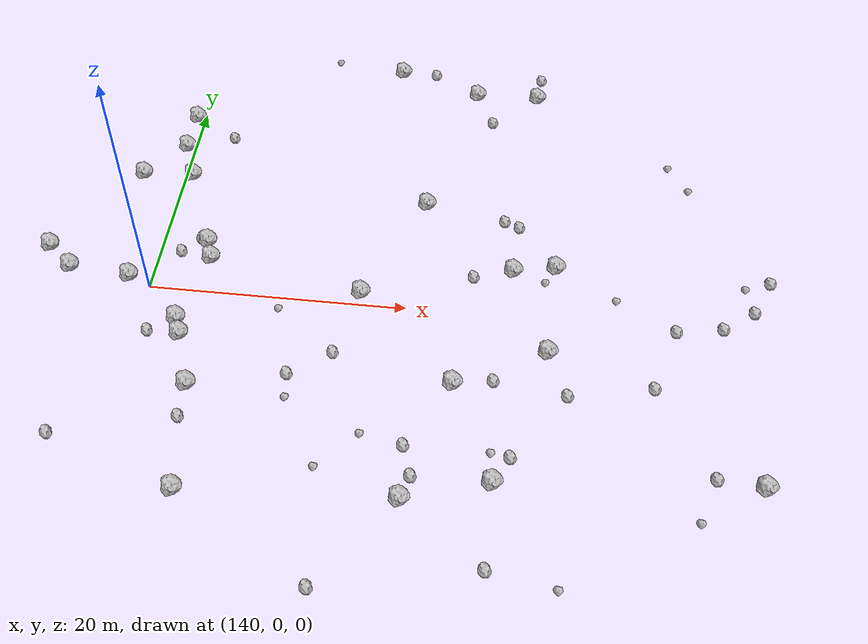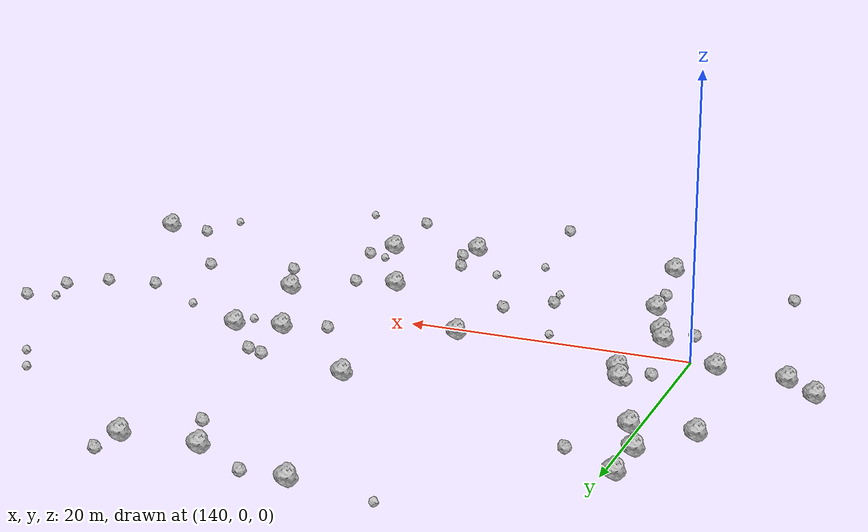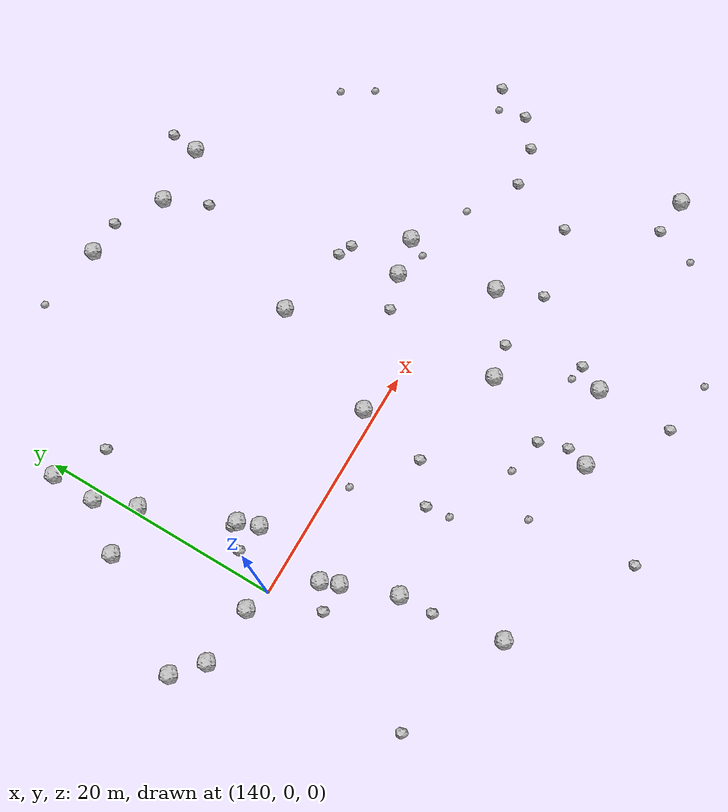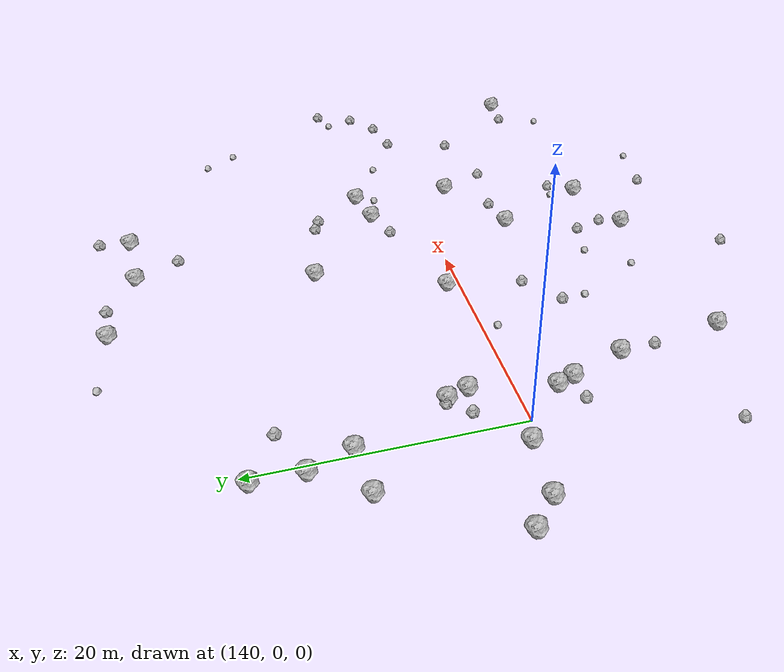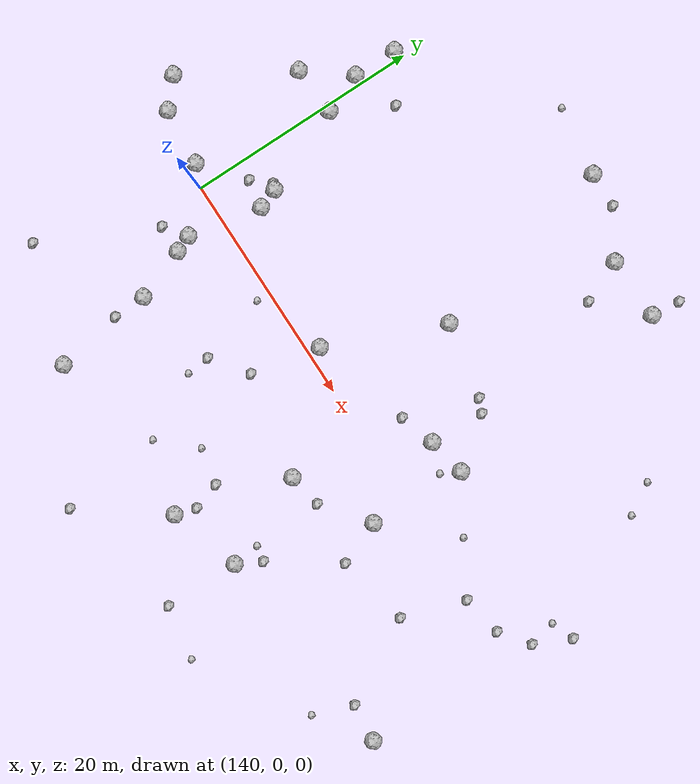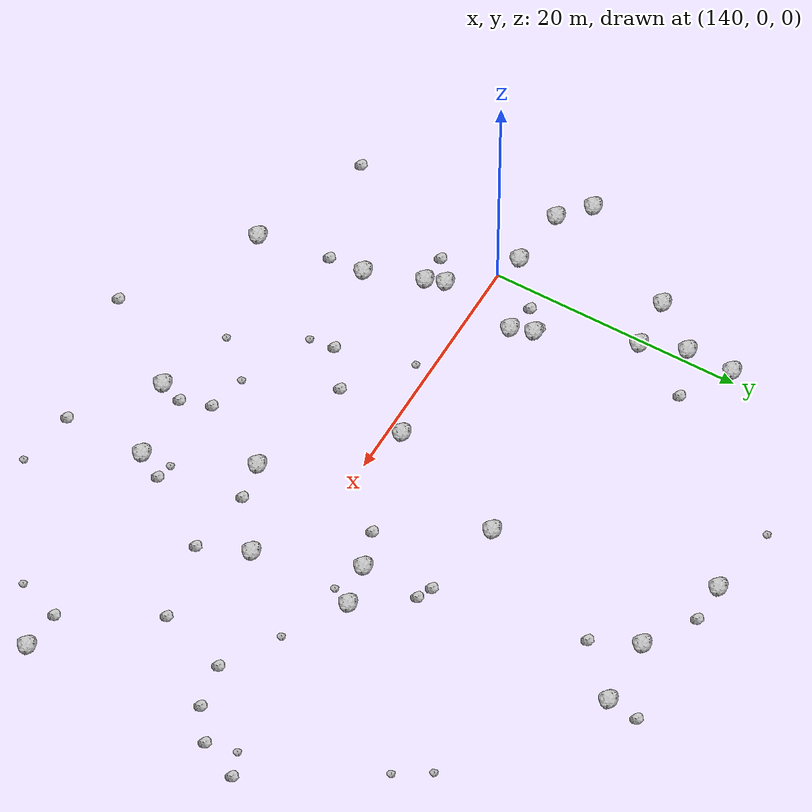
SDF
<sdf version="1.6">
 <world name="default">
  <include><uri>model://sun</uri></include>
  <model name="rock1_4_2">
   <include><uri>model://rock1</uri><pose>143.51014805563446 5.016420752145194 0.5 0 0 0</pose></include>
  </model>
  <model name="rock1_4_3">
   <include><uri>model://rock1</uri><pose>170.8578367880244 -3.149506183332683 0.5 0 0 0</pose></include>
  </model>
  <model name="rock1_4_4">
   <include><uri>model://rock1</uri><pose>140.57607064838362 12.3348396507077 0.5 0 0 0</pose></include>
  </model>
  <model name="rock1_4_5">
   <include><uri>model://rock1</uri><pose>136.42900978651386 12.049801055597449 0.5 0 0 0</pose></include>
  </model>
  <model name="rock1_4_6">
   <include><uri>model://rock1</uri><pose>163.75702598012705 25.16250592080069 0.5 0 0 0</pose></include>
  </model>
  <model name="rock1_4_7">
   <include><uri>model://rock1</uri><pose>143.3825758662695 -4.391469482176078 0.5 0 0 0</pose></include>
  </model>
  <model name="rock1_4_8">
   <include><uri>model://rock1</uri><pose>131.07032872320838 3.235529562305821 0.5 0 0 0</pose></include>
  </model>
  <model name="rock1_4_9">
   <include><uri>model://rock1</uri><pose>139.3436693755805 19.486059855640505 0.5 0 0 0</pose></include>
  </model>
  <model name="rock1_4_10">
   <include><uri>model://rock1</uri><pose>142.80912220576673 -2.9604191597337817 0.5 0 0 0</pose></include>
  </model>
  <model name="rock1_4_11">
   <include><uri>model://rock1</uri><pose>144.1149449514508 3.317030348351139 0.5 0 0 0</pose></include>
  </model>
  <model name="rock1_4_12">
   <include><uri>model://rock1</uri><pose>133.27815929344038 1.2567772095427472 0.5 0 0 0</pose></include>
  </model>
  <model name="rock1_4_13">
   <include><uri>model://rock1</uri><pose>144.98189438539745 -8.801110709634589 0.5 0 0 0</pose></include>
  </model>
  <model name="rock1_4_14">
   <include><uri>model://rock1</uri><pose>156.36877567372233 1.0593602633803698 0.5 0 0 0</pose></include>
  </model>
  <model name="rock1_4_15">
   <include><uri>model://rock1</uri><pose>167.94347064733944 4.5242794624924585 0.5 0 0 0</pose></include>
  </model>
  <model name="rock1_4_16">
   <include><uri>model://rock1</uri><pose>164.08301449894765 -6.6685418712460205 0.5 0 0 0</pose></include>
  </model>
  <model name="rock1_4_17">
   <include><uri>model://rock1</uri><pose>161.3223189070573 -16.432626966088662 0.5 0 0 0</pose></include>
  </model>
  <model name="rock1_4_18">
   <include><uri>model://rock1</uri><pose>167.42412462391982 -14.524097073220387 0.5 0 0 0</pose></include>
  </model>
  <model name="rock1_4_19">
   <include><uri>model://rock1</uri><pose>138.15510209858036 0.7935613185565096 0.5 0 0 0</pose></include>
  </model>
  <model name="rock1_4_20">
   <include><uri>model://rock1</uri><pose>156.76094325866688 27.5939037729907 0.5 0 0 0</pose></include>
  </model>
  <model name="rock1_4_21">
   <include><uri>model://rock1</uri><pose>185.79481274732134 -12.941725250611494 0.5 0 0 0</pose></include>
  </model>
  <model name="rock1_4_22">
   <include><uri>model://rock1</uri><pose>146.05177100094025 -17.32643920124154 0.5 0 0 0</pose></include>
  </model>
  <model name="rock1_4_23">
   <include><uri>model://rock1</uri><pose>160.53853951610387 11.032958484193792 0.5 0 0 0</pose></include>
  </model>
  <model name="rock1_4_24">
   <include><uri>model://rock1</uri><pose>139.29568673362675 15.726027384990623 0.5 0 0 0</pose></include>
  </model>
  <model name="rock1_4_25">
   <include><uri>model://rock1</uri><pose>171.24926413296998 5.174284361732788 0.5 0 0 0</pose></include>
  </model>
  <model name="rock1_4_26">
   <include><uri>model://rock1</uri><pose>169.1028883708278 25.32584142011565 0.5 0 0 0</pose></include>
  </model>
  <model name="rock2_4_0">
   <include><uri>model://rock2</uri><pose>180.34000969201637 -0.18440839468071246 0.3 0 0 0</pose></include>
  </model>
  <model name="rock2_4_1">
   <include><uri>model://rock2</uri><pose>142.95954157302282 5.219085020846094 0.3 0 0 0</pose></include>
  </model>
  <model name="rock2_4_2">
   <include><uri>model://rock2</uri><pose>182.51106028858712 -12.637947351043625 0.3 0 0 0</pose></include>
  </model>
  <model name="rock2_4_3">
   <include><uri>model://rock2</uri><pose>165.29958886742642 21.604712993386457 0.3 0 0 0</pose></include>
  </model>
  <model name="rock2_4_4">
   <include><uri>model://rock2</uri><pose>141.65432235788998 3.726934638115594 0.3 0 0 0</pose></include>
  </model>
  <model name="rock2_4_5">
   <include><uri>model://rock2</uri><pose>183.8630748376286 0.45004303359057474 0.3 0 0 0</pose></include>
  </model>
  <model name="rock2_4_6">
   <include><uri>model://rock2</uri><pose>161.85519948045854 -14.632638402180193 0.3 0 0 0</pose></include>
  </model>
  <model name="rock2_4_7">
   <include><uri>model://rock2</uri><pose>168.18258483889235 9.215054987622715 0.3 0 0 0</pose></include>
  </model>
  <model name="rock2_4_8">
   <include><uri>model://rock2</uri><pose>159.7966920225989 27.568530028766588 0.3 0 0 0</pose></include>
  </model>
  <model name="rock2_4_9">
   <include><uri>model://rock2</uri><pose>164.888376523441 3.562112148567863 0.3 0 0 0</pose></include>
  </model>
  <model name="rock2_4_10">
   <include><uri>model://rock2</uri><pose>143.14017786590148 17.1705378294498 0.3 0 0 0</pose></include>
  </model>
  <model name="rock2_4_11">
   <include><uri>model://rock2</uri><pose>178.56713741061424 -5.579925260524345 0.3 0 0 0</pose></include>
  </model>
  <model name="rock2_4_12">
   <include><uri>model://rock2</uri><pose>169.37041161355782 27.828465239361798 0.3 0 0 0</pose></include>
  </model>
  <model name="rock2_4_13">
   <include><uri>model://rock2</uri><pose>136.25523938603976 -13.975410772649933 0.3 0 0 0</pose></include>
  </model>
  <model name="rock2_4_14">
   <include><uri>model://rock2</uri><pose>161.0948563144104 -12.276291484655527 0.3 0 0 0</pose></include>
  </model>
  <model name="rock2_4_15">
   <include><uri>model://rock2</uri><pose>186.3216853087303 2.297003284995192 0.3 0 0 0</pose></include>
  </model>
  <model name="rock2_4_16">
   <include><uri>model://rock2</uri><pose>187.77017621691454 5.3935536224856975 0.3 0 0 0</pose></include>
  </model>
  <model name="rock2_4_17">
   <include><uri>model://rock2</uri><pose>166.98950786414366 9.740913079897219 0.3 0 0 0</pose></include>
  </model>
  <model name="rock2_4_18">
   <include><uri>model://rock2</uri><pose>167.32237741325014 -20.977582474391088 0.3 0 0 0</pose></include>
  </model>
  <model name="rock2_4_19">
   <include><uri>model://rock2</uri><pose>140.93200359522885 -4.355359658861147 0.3 0 0 0</pose></include>
  </model>
  <model name="rock2_4_20">
   <include><uri>model://rock2</uri><pose>155.06422036107725 -4.874995761205906 0.3 0 0 0</pose></include>
  </model>
  <model name="rock2_4_21">
   <include><uri>model://rock2</uri><pose>166.9843873411537 -6.163300440137608 0.3 0 0 0</pose></include>
  </model>
  <model name="rock2_4_22">
   <include><uri>model://rock2</uri><pose>145.05234779948728 -11.635780366037228 0.3 0 0 0</pose></include>
  </model>
  <model name="rock2_4_23">
   <include><uri>model://rock2</uri><pose>172.34424182261597 -6.899458742129308 0.3 0 0 0</pose></include>
  </model>
  <model name="rock2_4_24">
   <include><uri>model://rock2</uri><pose>168.52660367179064 -12.453855571552758 0.3 0 0 0</pose></include>
  </model>
  <model name="rock2_4_25">
   <include><uri>model://rock2</uri><pose>152.02280609671362 -7.141186833041285 0.3 0 0 0</pose></include>
  </model>
  <model name="rock2_4_26">
   <include><uri>model://rock2</uri><pose>156.18710121510222 -23.374047429103335 0.3 0 0 0</pose></include>
  </model>
  <model name="rock3_4_0">
   <include><uri>model://rock3</uri><pose>172.024633407598 -21.8426256679177 0.2 0 0 0</pose></include>
  </model>
  <model name="rock3_4_1">
   <include><uri>model://rock3</uri><pose>157.95471610966788 -11.643895335796394 0.2 0 0 0</pose></include>
  </model>
  <model name="rock3_4_2">
   <include><uri>model://rock3</uri><pose>175.89632934372878 2.355665188968601 0.2 0 0 0</pose></include>
  </model>
  <model name="rock3_4_3">
   <include><uri>model://rock3</uri><pose>167.16077069897278 -12.227906833440006 0.2 0 0 0</pose></include>
  </model>
  <model name="rock3_4_4">
   <include><uri>model://rock3</uri><pose>185.80402761019258 4.605347390738153 0.2 0 0 0</pose></include>
  </model>
  <model name="rock3_4_5">
   <include><uri>model://rock3</uri><pose>152.2132919096616 -9.180921369760043 0.2 0 0 0</pose></include>
  </model>
  <model name="rock3_4_6">
   <include><uri>model://rock3</uri><pose>181.94973060837626 14.917544637032428 0.2 0 0 0</pose></include>
  </model>
  <model name="rock3_4_7">
   <include><uri>model://rock3</uri><pose>180.36398338915268 17.502122584182146 0.2 0 0 0</pose></include>
  </model>
  <model name="rock3_4_8">
   <include><uri>model://rock3</uri><pose>150.76665575187025 28.453585320554225 0.2 0 0 0</pose></include>
  </model>
  <model name="rock3_4_9">
   <include><uri>model://rock3</uri><pose>181.2650355979234 -16.091417317072832 0.2 0 0 0</pose></include>
  </model>
  <model name="rock3_4_10">
   <include><uri>model://rock3</uri><pose>155.17822749819322 -14.624239971196356 0.2 0 0 0</pose></include>
  </model>
  <model name="rock3_4_11">
   <include><uri>model://rock3</uri><pose>150.30763959329747 -1.184681454781753 0.2 0 0 0</pose></include>
  </model>
  <model name="rock3_4_12">
   <include><uri>model://rock3</uri><pose>170.43640680703345 3.6010132437652373 0.2 0 0 0</pose></include>
  </model>
 </world>
</sdf>
